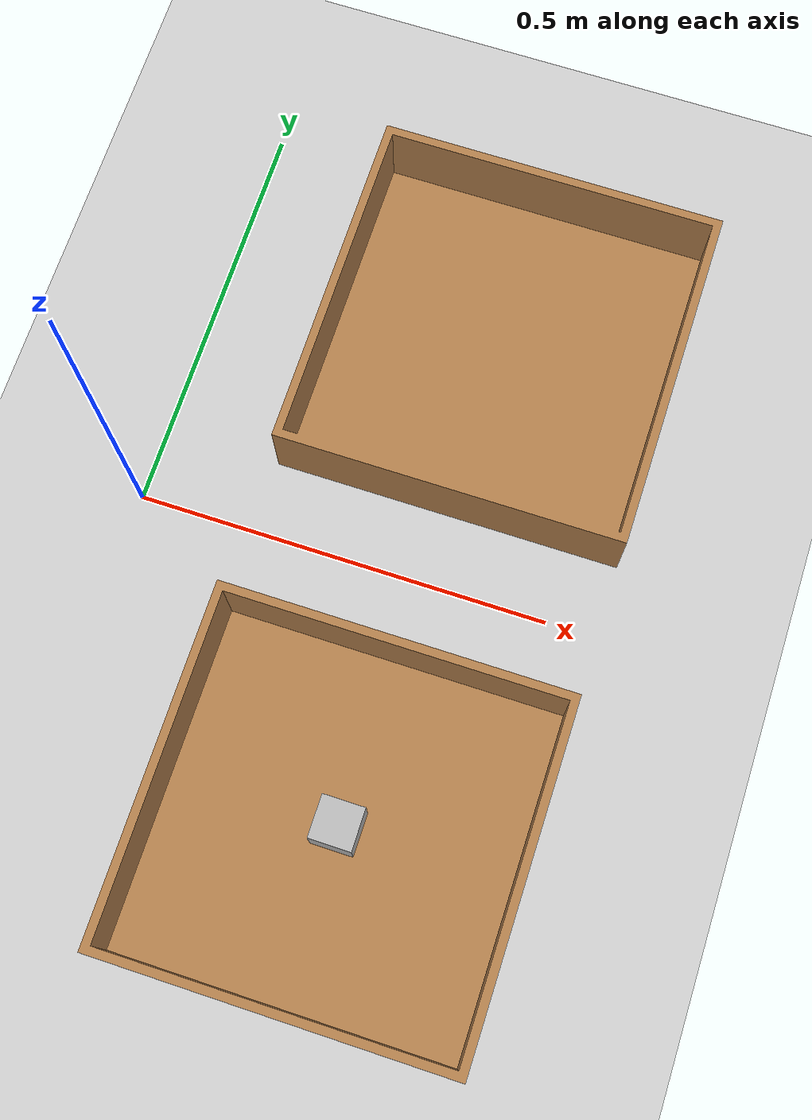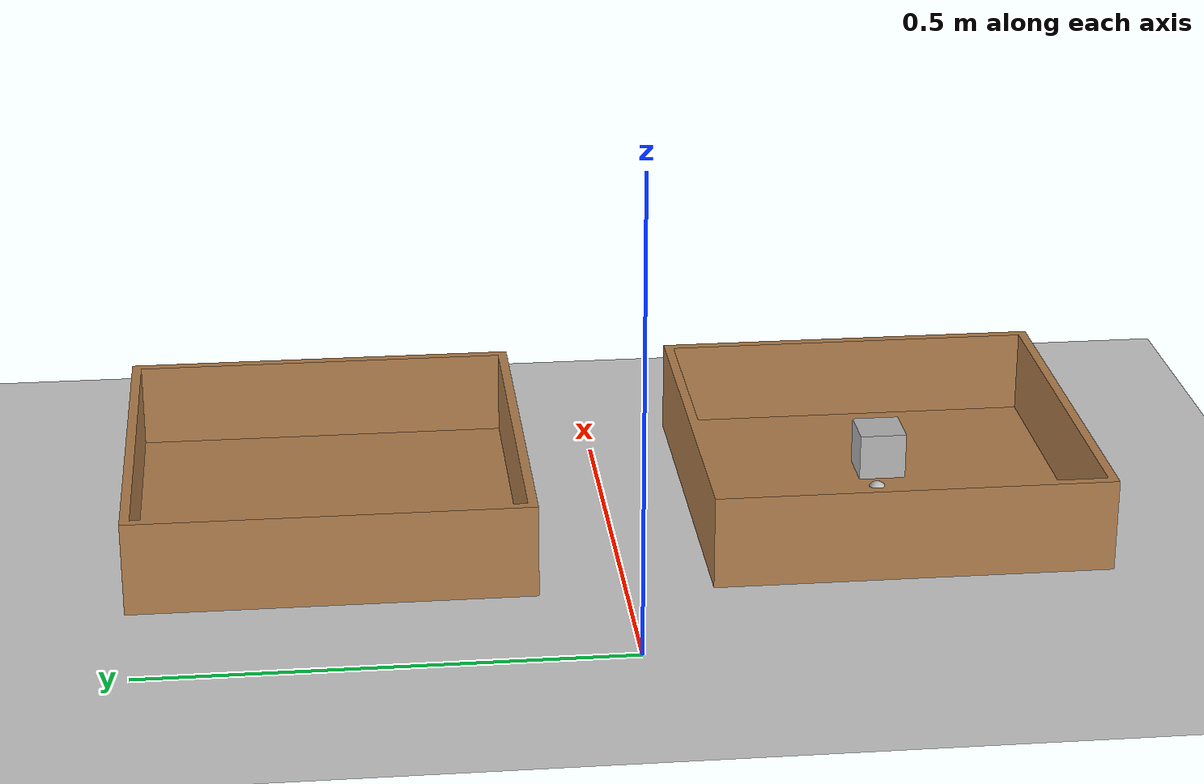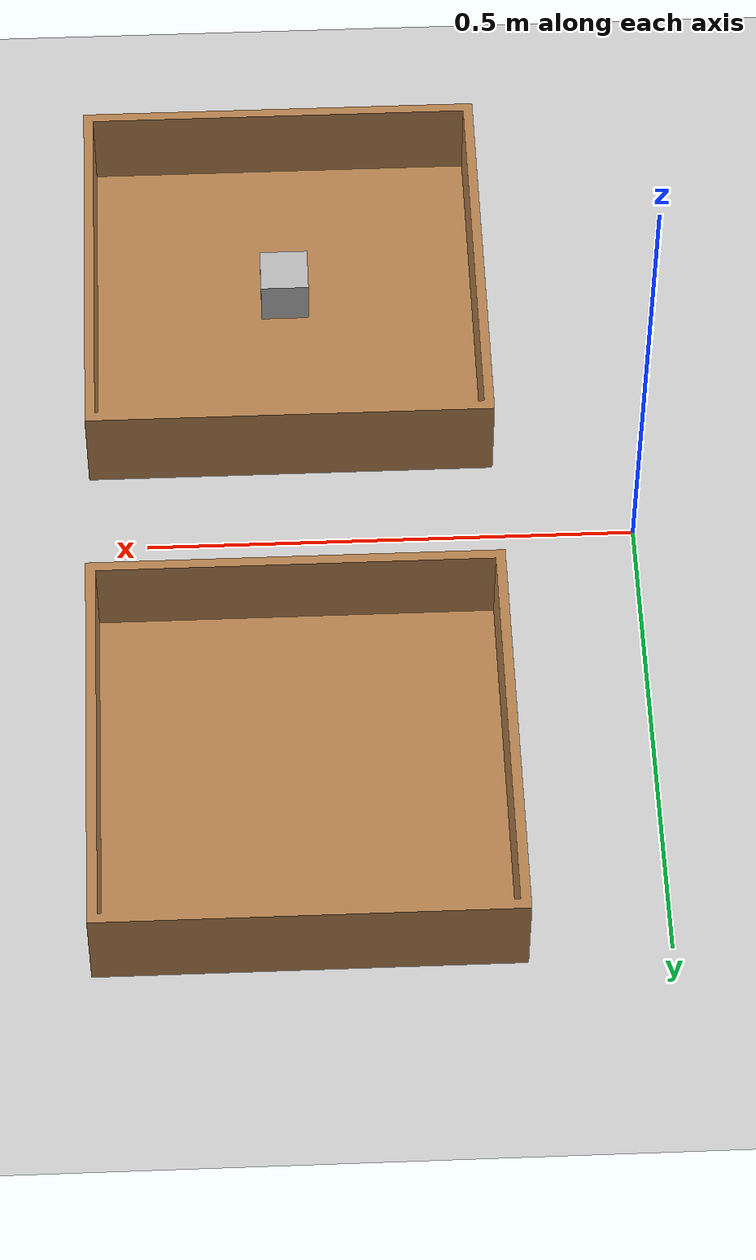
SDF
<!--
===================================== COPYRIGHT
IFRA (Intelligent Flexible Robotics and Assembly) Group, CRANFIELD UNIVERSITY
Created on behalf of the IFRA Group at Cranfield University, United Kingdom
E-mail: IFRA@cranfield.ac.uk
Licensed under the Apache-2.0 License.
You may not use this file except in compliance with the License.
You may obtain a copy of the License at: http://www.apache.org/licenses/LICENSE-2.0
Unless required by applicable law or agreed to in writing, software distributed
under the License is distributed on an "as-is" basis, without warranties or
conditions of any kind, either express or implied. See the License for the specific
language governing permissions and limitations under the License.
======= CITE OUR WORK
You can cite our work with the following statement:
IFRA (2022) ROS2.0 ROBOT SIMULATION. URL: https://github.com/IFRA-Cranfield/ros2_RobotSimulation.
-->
<?xml version="1.0" ?>

<sdf version="1.4">

  <world name="default">
    <model name="cube">
      <link name="link">
        <pose>0 0 0.025 0 0 0</pose>
        <inertial>
          <mass>0.0565</mass>
          <inertia>
            <ixx>2.3541666666666672e-05</ixx>
            <ixy>0</ixy>
            <ixz>0</ixz>
            <iyy>2.3541666666666672e-05</iyy>
            <iyz>0</iyz>
            <izz>2.3541666666666672e-05</izz>
          </inertia>
        </inertial>
        <collision name="collision">
          <geometry>
            <box>
              <size>0.05 0.05 0.05</size>
            </box>
          </geometry>
        </collision>
        <visual name="visual">
          <pose>0 0 0 0 0 0</pose>
          <geometry>
            <mesh>
              <uri>model://cube/meshes/model.dae</uri>
            </mesh>
          </geometry>
        </visual>
      </link>
      <pose>0.35 -0.3 0.03 0 0 0</pose>
    </model>
    <model name='sphere_1cm'>
      <link name='link'>
        <visual name='visual'>
          <geometry>
            <sphere>
              <radius>0.01</radius>
            </sphere>
          </geometry>
        </visual>
        <collision name='collision'>
          <laser_retro>0</laser_retro>
          <max_contacts>10</max_contacts>
          <pose>0 0 0 0 -0 0</pose>
          <geometry>
            <sphere>
              <radius>0.01</radius>
            </sphere>
          </geometry>
        </collision>
      </link>
      <static>true</static>
      <pose>0.35 -0.3 0.005 0 0 0</pose>
    </model>
    <model name="pick_bin">
      <static>true</static>
      <link name="link">
        <pose>0 0 0 0 0 0</pose>
        <inertial>
          <mass>2</mass>
          <inertia>
            <ixx>2.3541666666666672e-03</ixx>
            <ixy>0</ixy>
            <ixz>0</ixz>
            <iyy>2.3541666666666672e-03</iyy>
            <iyz>0</iyz>
            <izz>2.3541666666666672e-03</izz>
          </inertia>
        </inertial>
        <collision name="collision">
          <pose>0 0 0.0 0 0 0</pose>
          <geometry>
            <mesh>
              <uri>model://bin/meshes/model.stl</uri>
            </mesh>
          </geometry>
        </collision>
        <visual name="visual">
          <pose>0 0 0.0 0 0 0</pose>
          <geometry>
            <mesh>
              <uri>model://bin/meshes/model.dae</uri>
            </mesh>
          </geometry>
          <material>
            <script>
              <uri>file://media/materials/scripts/gazebo.material</uri>
              <name>Gazebo/Wood</name>
            </script>
          </material>
        </visual>
      </link>
      <pose>0.35 -0.3 0 0 0 0</pose>
    </model>
    <model name="place_bin">
      <static>true</static>
      <link name="link">
        <pose>0 0 0 0 0 0</pose>
        <inertial>
          <mass>2</mass>
          <inertia>
            <ixx>2.3541666666666672e-03</ixx>
            <ixy>0</ixy>
            <ixz>0</ixz>
            <iyy>2.3541666666666672e-03</iyy>
            <iyz>0</iyz>
            <izz>2.3541666666666672e-03</izz>
          </inertia>
        </inertial>
        <collision name="collision">
          <pose>0 0 0.0 0 0 0</pose>
          <geometry>
            <mesh>
              <uri>model://bin/meshes/model.stl</uri>
            </mesh>
          </geometry>
        </collision>
        <visual name="visual">
          <pose>0 0 0.0 0 0 0</pose>
          <geometry>
            <mesh>
              <uri>model://bin/meshes/model.dae</uri>
            </mesh>
          </geometry>
          <material>
            <script>
              <uri>file://media/materials/scripts/gazebo.material</uri>
              <name>Gazebo/Wood</name>
            </script>
          </material>
        </visual>
      </link>
      <pose>0.35 0.3 0 0 0 0</pose>
    </model>
    <include>
      <uri>model://ground_plane</uri>
    </include>

    <include>
      <uri>model://sun</uri>
    </include>

    <scene>
      <shadows>0</shadows>
    </scene>

    <!-- GAZEBO PLUGINS: -->
    <!-- The following plugins must be activated for the ros2_grasping to effectively work: -->

    <plugin name="gazebo_ros_state" filename="libgazebo_ros_state.so">
      <ros>
        <namespace>/ros2_grasp</namespace>
        <argument>model_states:=model_states</argument>
        <argument>link_states:=link_states</argument>
      </ros>
      <update_rate>1.0</update_rate>
    </plugin>

    <plugin name="gazebo_ros_properties" filename="libgazebo_ros_properties.so">
      <ros>
        <namespace>/ros2_grasp</namespace>
      </ros>
    </plugin>

  </world>
</sdf>
